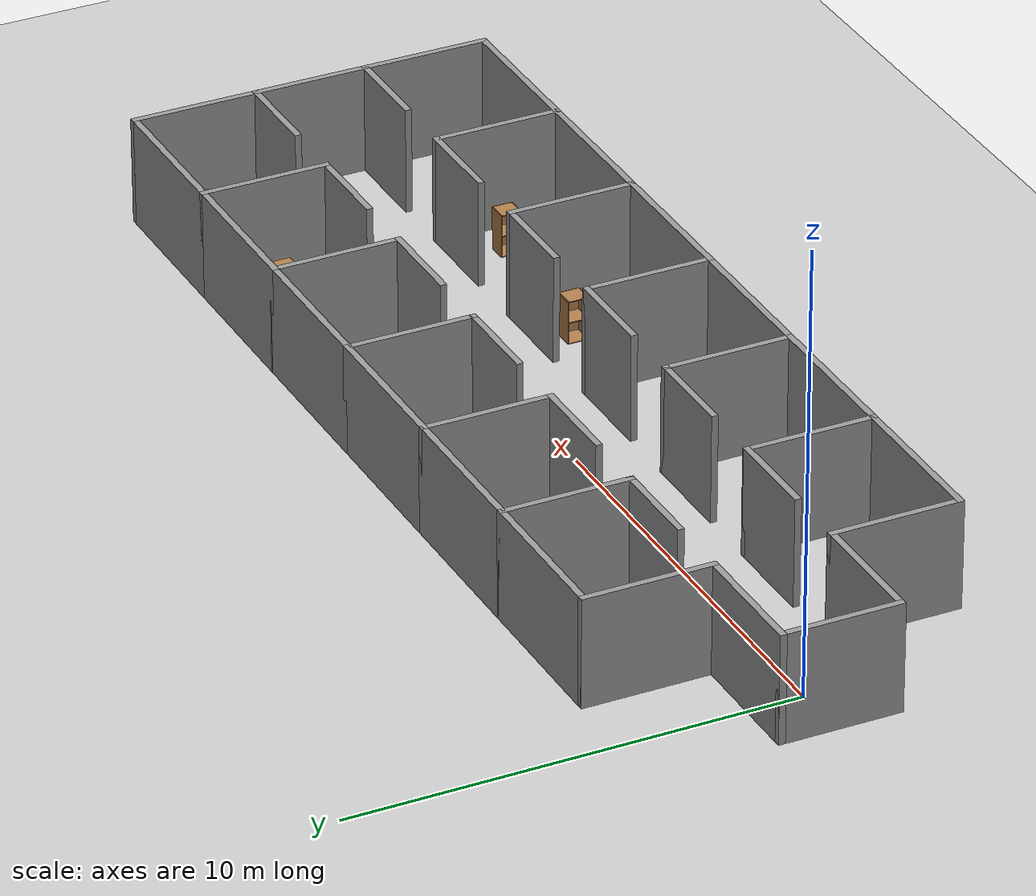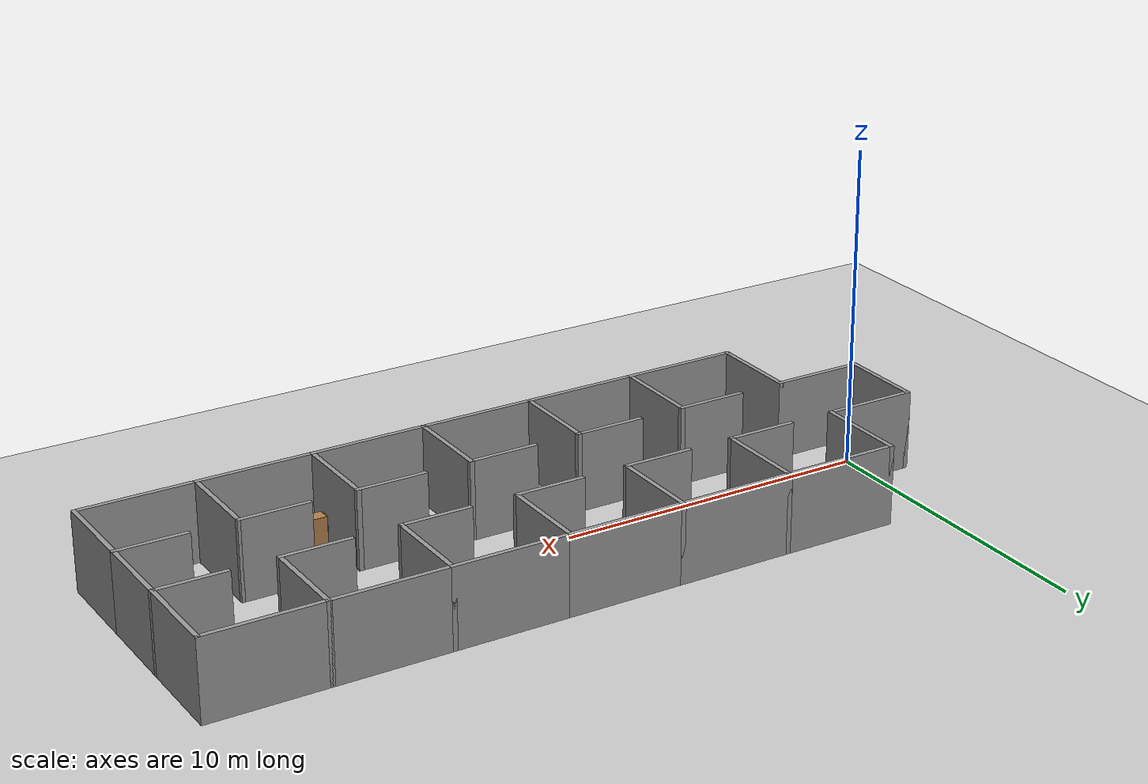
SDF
<sdf version="1.7">
 <world name="default">
  <light name="sun" type="directional">
   <pose>0 0 10 0 -0 0</pose>
   <diffuse>0.8 0.8 0.8 1</diffuse>
   <specular>0.2 0.2 0.2 1</specular>
   <attenuation>
    <range>1000</range>
    <constant>0.9</constant>
    <linear>0.01</linear>
    <quadratic>0.001</quadratic>
   </attenuation>
   <direction>-0.5 0.1 -0.9</direction>
   <spot><inner_angle>0</inner_angle><outer_angle>0</outer_angle><falloff>0</falloff></spot>
  </light>
  <model name="ground_plane">
   <static>1</static>
   <link name="link">
    <collision name="collision">
     <geometry><plane><normal>0 0 1</normal><size>100 100</size></plane></geometry>
     <surface><friction><ode><mu>100</mu><mu2>50</mu2></ode></friction></surface>
    </collision>
    <visual name="visual">
     <cast_shadows>0</cast_shadows>
     <geometry><plane><normal>0 0 1</normal><size>100 100</size></plane></geometry>
     <material>
      <script><uri>file://media/materials/scripts/gazebo.material</uri><name>Gazebo/Grey</name></script>
     </material>
    </visual>
   </link>
  </model>
  <gravity>0 0 -9.8</gravity>
  <magnetic_field>6e-06 2.3e-05 -4.2e-05</magnetic_field>
  <atmosphere type="adiabatic"/>
  <physics type="ode">
   <max_step_size>0.001</max_step_size>
   <real_time_factor>1</real_time_factor>
   <real_time_update_rate>1000</real_time_update_rate>
  </physics>
  <scene><ambient>0.4 0.4 0.4 1</ambient><background>0.7 0.7 0.7 1</background><shadows>1</shadows></scene>
  <spherical_coordinates>
   <surface_model>EARTH_WGS84</surface_model>
   <latitude_deg>0</latitude_deg>
   <longitude_deg>0</longitude_deg>
   <elevation>0</elevation>
   <heading_deg>0</heading_deg>
  </spherical_coordinates>
  <model name="indoors_hotal">
   <pose>10.9758 -0.129699 0 0 -0 0</pose>
   <link name="Wall_0">
    <collision name="Wall_0_Collision">
     <geometry><box><size>2.75 0.15 2.5</size></box></geometry>
     <pose>0 0 1.25 0 -0 0</pose>
    </collision>
    <visual name="Wall_0_Visual">
     <pose>0 0 1.25 0 -0 0</pose>
     <geometry><box><size>2.75 0.15 2.5</size></box></geometry>
     <material>
      <script><uri>file://media/materials/scripts/gazebo.material</uri><name>Gazebo/Grey</name></script>
      <ambient>1 1 1 1</ambient>
     </material>
     <meta><layer>0</layer></meta>
    </visual>
    <pose>-12.225 -0 0 0 -0 -1.5708</pose>
   </link>
   <link name="Wall_10">
    <collision name="Wall_10_Collision">
     <geometry><box><size>3 0.15 2.5</size></box></geometry>
     <pose>0 0 1.25 0 -0 0</pose>
    </collision>
    <visual name="Wall_10_Visual">
     <pose>0 0 1.25 0 -0 0</pose>
     <geometry><box><size>3 0.15 2.5</size></box></geometry>
     <material>
      <script><uri>file://media/materials/scripts/gazebo.material</uri><name>Gazebo/Grey</name></script>
      <ambient>1 1 1 1</ambient>
     </material>
     <meta><layer>0</layer></meta>
    </visual>
    <pose>-9.375 2.725 0 0 -0 1.5708</pose>
   </link>
   <link name="Wall_11">
    <collision name="Wall_11_Collision">
     <geometry><box><size>3.75 0.15 2.5</size></box></geometry>
     <pose>0 0 1.25 0 -0 0</pose>
    </collision>
    <visual name="Wall_11_Visual">
     <pose>0 0 1.25 0 -0 0</pose>
     <geometry><box><size>3.75 0.15 2.5</size></box></geometry>
     <material>
      <script><uri>file://media/materials/scripts/gazebo.material</uri><name>Gazebo/Grey</name></script>
      <ambient>1 1 1 1</ambient>
     </material>
     <meta><layer>0</layer></meta>
    </visual>
    <pose>-7.575 4.15 0 0 -0 0</pose>
   </link>
   <link name="Wall_12">
    <collision name="Wall_12_Collision">
     <geometry><box><size>3 0.15 2.5</size></box></geometry>
     <pose>0 0 1.25 0 -0 0</pose>
    </collision>
    <visual name="Wall_12_Visual">
     <pose>0 0 1.25 0 -0 0</pose>
     <geometry><box><size>3 0.15 2.5</size></box></geometry>
     <material>
      <script><uri>file://media/materials/scripts/gazebo.material</uri><name>Gazebo/Grey</name></script>
      <ambient>1 1 1 1</ambient>
     </material>
     <meta><layer>0</layer></meta>
    </visual>
    <pose>-5.775 2.725 0 0 -0 -1.5708</pose>
   </link>
   <link name="Wall_13">
    <collision name="Wall_13_Collision">
     <geometry><box><size>2.25 0.15 2.5</size></box></geometry>
     <pose>0 0 1.25 0 -0 0</pose>
    </collision>
    <visual name="Wall_13_Visual">
     <pose>0 0 1.25 0 -0 0</pose>
     <geometry><box><size>2.25 0.15 2.5</size></box></geometry>
     <material>
      <script><uri>file://media/materials/scripts/gazebo.material</uri><name>Gazebo/Grey</name></script>
      <ambient>1 1 1 1</ambient>
     </material>
     <meta><layer>0</layer></meta>
    </visual>
    <pose>-6.825 1.3 0 0 -0 3.14159</pose>
   </link>
   <link name="Wall_15">
    <collision name="Wall_15_Collision">
     <geometry><box><size>3.75 0.15 2.5</size></box></geometry>
     <pose>0 0 1.25 0 -0 0</pose>
    </collision>
    <visual name="Wall_15_Visual">
     <pose>0 0 1.25 0 -0 0</pose>
     <geometry><box><size>3.75 0.15 2.5</size></box></geometry>
     <material>
      <script><uri>file://media/materials/scripts/gazebo.material</uri><name>Gazebo/Grey</name></script>
      <ambient>1 1 1 1</ambient>
     </material>
     <meta><layer>0</layer></meta>
    </visual>
    <pose>-3.975 4.15 0 0 -0 0</pose>
   </link>
   <link name="Wall_16">
    <collision name="Wall_16_Collision">
     <geometry><box><size>3 0.15 2.5</size></box></geometry>
     <pose>0 0 1.25 0 -0 0</pose>
    </collision>
    <visual name="Wall_16_Visual">
     <pose>0 0 1.25 0 -0 0</pose>
     <geometry><box><size>3 0.15 2.5</size></box></geometry>
     <material>
      <script><uri>file://media/materials/scripts/gazebo.material</uri><name>Gazebo/Grey</name></script>
      <ambient>1 1 1 1</ambient>
     </material>
     <meta><layer>0</layer></meta>
    </visual>
    <pose>-2.175 2.725 0 0 -0 -1.5708</pose>
   </link>
   <link name="Wall_17">
    <collision name="Wall_17_Collision">
     <geometry><box><size>2.25 0.15 2.5</size></box></geometry>
     <pose>0 0 1.25 0 -0 0</pose>
    </collision>
    <visual name="Wall_17_Visual">
     <pose>0 0 1.25 0 -0 0</pose>
     <geometry><box><size>2.25 0.15 2.5</size></box></geometry>
     <material>
      <script><uri>file://media/materials/scripts/gazebo.material</uri><name>Gazebo/Grey</name></script>
      <ambient>1 1 1 1</ambient>
     </material>
     <meta><layer>0</layer></meta>
    </visual>
    <pose>-3.225 1.3 0 0 -0 3.14159</pose>
   </link>
   <link name="Wall_19">
    <collision name="Wall_19_Collision">
     <geometry><box><size>3.75 0.15 2.5</size></box></geometry>
     <pose>0 0 1.25 0 -0 0</pose>
    </collision>
    <visual name="Wall_19_Visual">
     <pose>0 0 1.25 0 -0 0</pose>
     <geometry><box><size>3.75 0.15 2.5</size></box></geometry>
     <material>
      <script><uri>file://media/materials/scripts/gazebo.material</uri><name>Gazebo/Grey</name></script>
      <ambient>1 1 1 1</ambient>
     </material>
     <meta><layer>0</layer></meta>
    </visual>
    <pose>-3.975 -4.15 0 0 -0 0</pose>
   </link>
   <link name="Wall_2">
    <collision name="Wall_2_Collision">
     <geometry><box><size>3 0.15 2.5</size></box></geometry>
     <pose>0 0 1.25 0 -0 0</pose>
    </collision>
    <visual name="Wall_2_Visual">
     <pose>0 0 1.25 0 -0 0</pose>
     <geometry><box><size>3 0.15 2.5</size></box></geometry>
     <material>
      <script><uri>file://media/materials/scripts/gazebo.material</uri><name>Gazebo/Grey</name></script>
      <ambient>1 1 1 1</ambient>
     </material>
     <meta><layer>0</layer></meta>
    </visual>
    <pose>-10.8 -1.3 0 0 -0 0</pose>
   </link>
   <link name="Wall_20">
    <collision name="Wall_20_Collision">
     <geometry><box><size>3 0.15 2.5</size></box></geometry>
     <pose>0 0 1.25 0 -0 0</pose>
    </collision>
    <visual name="Wall_20_Visual">
     <pose>0 0 1.25 0 -0 0</pose>
     <geometry><box><size>3 0.15 2.5</size></box></geometry>
     <material>
      <script><uri>file://media/materials/scripts/gazebo.material</uri><name>Gazebo/Grey</name></script>
      <ambient>1 1 1 1</ambient>
     </material>
     <meta><layer>0</layer></meta>
    </visual>
    <pose>-2.175 -2.725 0 0 -0 1.5708</pose>
   </link>
   <link name="Wall_21">
    <collision name="Wall_21_Collision">
     <geometry><box><size>2.25 0.15 2.5</size></box></geometry>
     <pose>0 0 1.25 0 -0 0</pose>
    </collision>
    <visual name="Wall_21_Visual">
     <pose>0 0 1.25 0 -0 0</pose>
     <geometry><box><size>2.25 0.15 2.5</size></box></geometry>
     <material>
      <script><uri>file://media/materials/scripts/gazebo.material</uri><name>Gazebo/Grey</name></script>
      <ambient>1 1 1 1</ambient>
     </material>
     <meta><layer>0</layer></meta>
    </visual>
    <pose>-3.225 -1.3 0 0 -0 3.14159</pose>
   </link>
   <link name="Wall_23">
    <collision name="Wall_23_Collision">
     <geometry><box><size>3.75 0.15 2.5</size></box></geometry>
     <pose>0 0 1.25 0 -0 0</pose>
    </collision>
    <visual name="Wall_23_Visual">
     <pose>0 0 1.25 0 -0 0</pose>
     <geometry><box><size>3.75 0.15 2.5</size></box></geometry>
     <material>
      <script><uri>file://media/materials/scripts/gazebo.material</uri><name>Gazebo/Grey</name></script>
      <ambient>1 1 1 1</ambient>
     </material>
     <meta><layer>0</layer></meta>
    </visual>
    <pose>-0.375 4.15 0 0 -0 0</pose>
   </link>
   <link name="Wall_24">
    <collision name="Wall_24_Collision">
     <geometry><box><size>3 0.15 2.5</size></box></geometry>
     <pose>0 0 1.25 0 -0 0</pose>
    </collision>
    <visual name="Wall_24_Visual">
     <pose>0 0 1.25 0 -0 0</pose>
     <geometry><box><size>3 0.15 2.5</size></box></geometry>
     <material>
      <script><uri>file://media/materials/scripts/gazebo.material</uri><name>Gazebo/Grey</name></script>
      <ambient>1 1 1 1</ambient>
     </material>
     <meta><layer>0</layer></meta>
    </visual>
    <pose>1.425 2.725 0 0 -0 -1.5708</pose>
   </link>
   <link name="Wall_25">
    <collision name="Wall_25_Collision">
     <geometry><box><size>2.25 0.15 2.5</size></box></geometry>
     <pose>0 0 1.25 0 -0 0</pose>
    </collision>
    <visual name="Wall_25_Visual">
     <pose>0 0 1.25 0 -0 0</pose>
     <geometry><box><size>2.25 0.15 2.5</size></box></geometry>
     <material>
      <script><uri>file://media/materials/scripts/gazebo.material</uri><name>Gazebo/Grey</name></script>
      <ambient>1 1 1 1</ambient>
     </material>
     <meta><layer>0</layer></meta>
    </visual>
    <pose>0.375 1.3 0 0 -0 3.14159</pose>
   </link>
   <link name="Wall_27">
    <collision name="Wall_27_Collision">
     <geometry><box><size>3.75 0.15 2.5</size></box></geometry>
     <pose>0 0 1.25 0 -0 0</pose>
    </collision>
    <visual name="Wall_27_Visual">
     <pose>0 0 1.25 0 -0 0</pose>
     <geometry><box><size>3.75 0.15 2.5</size></box></geometry>
     <material>
      <script><uri>file://media/materials/scripts/gazebo.material</uri><name>Gazebo/Grey</name></script>
      <ambient>1 1 1 1</ambient>
     </material>
     <meta><layer>0</layer></meta>
    </visual>
    <pose>-0.375 -4.15 0 0 -0 0</pose>
   </link>
   <link name="Wall_28">
    <collision name="Wall_28_Collision">
     <geometry><box><size>3 0.15 2.5</size></box></geometry>
     <pose>0 0 1.25 0 -0 0</pose>
    </collision>
    <visual name="Wall_28_Visual">
     <pose>0 0 1.25 0 -0 0</pose>
     <geometry><box><size>3 0.15 2.5</size></box></geometry>
     <material>
      <script><uri>file://media/materials/scripts/gazebo.material</uri><name>Gazebo/Grey</name></script>
      <ambient>1 1 1 1</ambient>
     </material>
     <meta><layer>0</layer></meta>
    </visual>
    <pose>1.425 -2.725 0 0 -0 1.5708</pose>
   </link>
   <link name="Wall_29">
    <collision name="Wall_29_Collision">
     <geometry><box><size>2.25 0.15 2.5</size></box></geometry>
     <pose>0 0 1.25 0 -0 0</pose>
    </collision>
    <visual name="Wall_29_Visual">
     <pose>0 0 1.25 0 -0 0</pose>
     <geometry><box><size>2.25 0.15 2.5</size></box></geometry>
     <material>
      <script><uri>file://media/materials/scripts/gazebo.material</uri><name>Gazebo/Grey</name></script>
      <ambient>1 1 1 1</ambient>
     </material>
     <meta><layer>0</layer></meta>
    </visual>
    <pose>0.375 -1.3 0 0 -0 3.14159</pose>
   </link>
   <link name="Wall_31">
    <collision name="Wall_31_Collision">
     <geometry><box><size>3.75 0.15 2.5</size></box></geometry>
     <pose>0 0 1.25 0 -0 0</pose>
    </collision>
    <visual name="Wall_31_Visual">
     <pose>0 0 1.25 0 -0 0</pose>
     <geometry><box><size>3.75 0.15 2.5</size></box></geometry>
     <material>
      <script><uri>file://media/materials/scripts/gazebo.material</uri><name>Gazebo/Grey</name></script>
      <ambient>1 1 1 1</ambient>
     </material>
     <meta><layer>0</layer></meta>
    </visual>
    <pose>3.225 4.15 0 0 -0 0</pose>
   </link>
   <link name="Wall_32">
    <collision name="Wall_32_Collision">
     <geometry><box><size>3 0.15 2.5</size></box></geometry>
     <pose>0 0 1.25 0 -0 0</pose>
    </collision>
    <visual name="Wall_32_Visual">
     <pose>0 0 1.25 0 -0 0</pose>
     <geometry><box><size>3 0.15 2.5</size></box></geometry>
     <material>
      <script><uri>file://media/materials/scripts/gazebo.material</uri><name>Gazebo/Grey</name></script>
      <ambient>1 1 1 1</ambient>
     </material>
     <meta><layer>0</layer></meta>
    </visual>
    <pose>5.025 2.725 0 0 -0 -1.5708</pose>
   </link>
   <link name="Wall_33">
    <collision name="Wall_33_Collision">
     <geometry><box><size>2.25 0.15 2.5</size></box></geometry>
     <pose>0 0 1.25 0 -0 0</pose>
    </collision>
    <visual name="Wall_33_Visual">
     <pose>0 0 1.25 0 -0 0</pose>
     <geometry><box><size>2.25 0.15 2.5</size></box></geometry>
     <material>
      <script><uri>file://media/materials/scripts/gazebo.material</uri><name>Gazebo/Grey</name></script>
      <ambient>1 1 1 1</ambient>
     </material>
     <meta><layer>0</layer></meta>
    </visual>
    <pose>3.975 1.3 0 0 -0 3.14159</pose>
   </link>
   <link name="Wall_35">
    <collision name="Wall_35_Collision">
     <geometry><box><size>3.75 0.15 2.5</size></box></geometry>
     <pose>0 0 1.25 0 -0 0</pose>
    </collision>
    <visual name="Wall_35_Visual">
     <pose>0 0 1.25 0 -0 0</pose>
     <geometry><box><size>3.75 0.15 2.5</size></box></geometry>
     <material>
      <script><uri>file://media/materials/scripts/gazebo.material</uri><name>Gazebo/Grey</name></script>
      <ambient>1 1 1 1</ambient>
     </material>
     <meta><layer>0</layer></meta>
    </visual>
    <pose>6.825 4.15 0 0 -0 0</pose>
   </link>
   <link name="Wall_36">
    <collision name="Wall_36_Collision">
     <geometry><box><size>3 0.15 2.5</size></box></geometry>
     <pose>0 0 1.25 0 -0 0</pose>
    </collision>
    <visual name="Wall_36_Visual">
     <pose>0 0 1.25 0 -0 0</pose>
     <geometry><box><size>3 0.15 2.5</size></box></geometry>
     <material>
      <script><uri>file://media/materials/scripts/gazebo.material</uri><name>Gazebo/Grey</name></script>
      <ambient>1 1 1 1</ambient>
     </material>
     <meta><layer>0</layer></meta>
    </visual>
    <pose>8.625 2.725 0 0 -0 -1.5708</pose>
   </link>
   <link name="Wall_37">
    <collision name="Wall_37_Collision">
     <geometry><box><size>2.25 0.15 2.5</size></box></geometry>
     <pose>0 0 1.25 0 -0 0</pose>
    </collision>
    <visual name="Wall_37_Visual">
     <pose>0 0 1.25 0 -0 0</pose>
     <geometry><box><size>2.25 0.15 2.5</size></box></geometry>
     <material>
      <script><uri>file://media/materials/scripts/gazebo.material</uri><name>Gazebo/Grey</name></script>
      <ambient>1 1 1 1</ambient>
     </material>
     <meta><layer>0</layer></meta>
    </visual>
    <pose>7.575 1.3 0 0 -0 3.14159</pose>
   </link>
   <link name="Wall_39">
    <collision name="Wall_39_Collision">
     <geometry><box><size>3.75 0.15 2.5</size></box></geometry>
     <pose>0 0 1.25 0 -0 0</pose>
    </collision>
    <visual name="Wall_39_Visual">
     <pose>0 0 1.25 0 -0 0</pose>
     <geometry><box><size>3.75 0.15 2.5</size></box></geometry>
     <material>
      <script><uri>file://media/materials/scripts/gazebo.material</uri><name>Gazebo/Grey</name></script>
      <ambient>1 1 1 1</ambient>
     </material>
     <meta><layer>0</layer></meta>
    </visual>
    <pose>10.425 4.15 0 0 -0 0</pose>
   </link>
   <link name="Wall_4">
    <collision name="Wall_4_Collision">
     <geometry><box><size>3 0.15 2.5</size></box></geometry>
     <pose>0 0 1.25 0 -0 0</pose>
    </collision>
    <visual name="Wall_4_Visual">
     <pose>0 0 1.25 0 -0 0</pose>
     <geometry><box><size>3 0.15 2.5</size></box></geometry>
     <material>
      <script><uri>file://media/materials/scripts/gazebo.material</uri><name>Gazebo/Grey</name></script>
      <ambient>1 1 1 1</ambient>
     </material>
     <meta><layer>0</layer></meta>
    </visual>
    <pose>-9.375 -2.725 0 0 -0 -1.5708</pose>
   </link>
   <link name="Wall_40">
    <collision name="Wall_40_Collision">
     <geometry><box><size>3 0.15 2.5</size></box></geometry>
     <pose>0 0 1.25 0 -0 0</pose>
    </collision>
    <visual name="Wall_40_Visual">
     <pose>0 0 1.25 0 -0 0</pose>
     <geometry><box><size>3 0.15 2.5</size></box></geometry>
     <material>
      <script><uri>file://media/materials/scripts/gazebo.material</uri><name>Gazebo/Grey</name></script>
      <ambient>1 1 1 1</ambient>
     </material>
     <meta><layer>0</layer></meta>
    </visual>
    <pose>12.225 2.725 0 0 -0 -1.5708</pose>
   </link>
   <link name="Wall_41">
    <collision name="Wall_41_Collision">
     <geometry><box><size>2.25 0.15 2.5</size></box></geometry>
     <pose>0 0 1.25 0 -0 0</pose>
    </collision>
    <visual name="Wall_41_Visual">
     <pose>0 0 1.25 0 -0 0</pose>
     <geometry><box><size>2.25 0.15 2.5</size></box></geometry>
     <material>
      <script><uri>file://media/materials/scripts/gazebo.material</uri><name>Gazebo/Grey</name></script>
      <ambient>1 1 1 1</ambient>
     </material>
     <meta><layer>0</layer></meta>
    </visual>
    <pose>11.175 1.3 0 0 -0 3.14159</pose>
   </link>
   <link name="Wall_43">
    <collision name="Wall_43_Collision">
     <geometry><box><size>3.75 0.15 2.5</size></box></geometry>
     <pose>0 0 1.25 0 -0 0</pose>
    </collision>
    <visual name="Wall_43_Visual">
     <pose>0 0 1.25 0 -0 0</pose>
     <geometry><box><size>3.75 0.15 2.5</size></box></geometry>
     <material>
      <script><uri>file://media/materials/scripts/gazebo.material</uri><name>Gazebo/Grey</name></script>
      <ambient>1 1 1 1</ambient>
     </material>
     <meta><layer>0</layer></meta>
    </visual>
    <pose>3.225 -4.15 0 0 -0 0</pose>
   </link>
   <link name="Wall_44">
    <collision name="Wall_44_Collision">
     <geometry><box><size>3 0.15 2.5</size></box></geometry>
     <pose>0 0 1.25 0 -0 0</pose>
    </collision>
    <visual name="Wall_44_Visual">
     <pose>0 0 1.25 0 -0 0</pose>
     <geometry><box><size>3 0.15 2.5</size></box></geometry>
     <material>
      <script><uri>file://media/materials/scripts/gazebo.material</uri><name>Gazebo/Grey</name></script>
      <ambient>1 1 1 1</ambient>
     </material>
     <meta><layer>0</layer></meta>
    </visual>
    <pose>5.025 -2.725 0 0 -0 1.5708</pose>
   </link>
   <link name="Wall_45">
    <collision name="Wall_45_Collision">
     <geometry><box><size>2.25 0.15 2.5</size></box></geometry>
     <pose>0 0 1.25 0 -0 0</pose>
    </collision>
    <visual name="Wall_45_Visual">
     <pose>0 0 1.25 0 -0 0</pose>
     <geometry><box><size>2.25 0.15 2.5</size></box></geometry>
     <material>
      <script><uri>file://media/materials/scripts/gazebo.material</uri><name>Gazebo/Grey</name></script>
      <ambient>1 1 1 1</ambient>
     </material>
     <meta><layer>0</layer></meta>
    </visual>
    <pose>3.975 -1.3 0 0 -0 3.14159</pose>
   </link>
   <link name="Wall_47">
    <collision name="Wall_47_Collision">
     <geometry><box><size>3.75 0.15 2.5</size></box></geometry>
     <pose>0 0 1.25 0 -0 0</pose>
    </collision>
    <visual name="Wall_47_Visual">
     <pose>0 0 1.25 0 -0 0</pose>
     <geometry><box><size>3.75 0.15 2.5</size></box></geometry>
     <material>
      <script><uri>file://media/materials/scripts/gazebo.material</uri><name>Gazebo/Grey</name></script>
      <ambient>1 1 1 1</ambient>
     </material>
     <meta><layer>0</layer></meta>
    </visual>
    <pose>6.825 -4.15 0 0 -0 0</pose>
   </link>
   <link name="Wall_48">
    <collision name="Wall_48_Collision">
     <geometry><box><size>3 0.15 2.5</size></box></geometry>
     <pose>0 0 1.25 0 -0 0</pose>
    </collision>
    <visual name="Wall_48_Visual">
     <pose>0 0 1.25 0 -0 0</pose>
     <geometry><box><size>3 0.15 2.5</size></box></geometry>
     <material>
      <script><uri>file://media/materials/scripts/gazebo.material</uri><name>Gazebo/Grey</name></script>
      <ambient>1 1 1 1</ambient>
     </material>
     <meta><layer>0</layer></meta>
    </visual>
    <pose>8.625 -2.725 0 0 -0 1.5708</pose>
   </link>
   <link name="Wall_49">
    <collision name="Wall_49_Collision">
     <geometry><box><size>2.25 0.15 2.5</size></box></geometry>
     <pose>0 0 1.25 0 -0 0</pose>
    </collision>
    <visual name="Wall_49_Visual">
     <pose>0 0 1.25 0 -0 0</pose>
     <geometry><box><size>2.25 0.15 2.5</size></box></geometry>
     <material>
      <script><uri>file://media/materials/scripts/gazebo.material</uri><name>Gazebo/Grey</name></script>
      <ambient>1 1 1 1</ambient>
     </material>
     <meta><layer>0</layer></meta>
    </visual>
    <pose>7.575 -1.3 0 0 -0 3.14159</pose>
   </link>
   <link name="Wall_5">
    <collision name="Wall_5_Collision">
     <geometry><box><size>3.75 0.15 2.5</size></box></geometry>
     <pose>0 0 1.25 0 -0 0</pose>
    </collision>
    <visual name="Wall_5_Visual">
     <pose>0 0 1.25 0 -0 0</pose>
     <geometry><box><size>3.75 0.15 2.5</size></box></geometry>
     <material>
      <script><uri>file://media/materials/scripts/gazebo.material</uri><name>Gazebo/Grey</name></script>
      <ambient>1 1 1 1</ambient>
     </material>
     <meta><layer>0</layer></meta>
    </visual>
    <pose>-7.575 -4.15 0 0 -0 0</pose>
   </link>
   <link name="Wall_51">
    <collision name="Wall_51_Collision">
     <geometry><box><size>3.75 0.15 2.5</size></box></geometry>
     <pose>0 0 1.25 0 -0 0</pose>
    </collision>
    <visual name="Wall_51_Visual">
     <pose>0 0 1.25 0 -0 0</pose>
     <geometry><box><size>3.75 0.15 2.5</size></box></geometry>
     <material>
      <script><uri>file://media/materials/scripts/gazebo.material</uri><name>Gazebo/Grey</name></script>
      <ambient>1 1 1 1</ambient>
     </material>
     <meta><layer>0</layer></meta>
    </visual>
    <pose>10.425 -4.15 0 0 -0 0</pose>
   </link>
   <link name="Wall_52">
    <collision name="Wall_52_Collision">
     <geometry><box><size>3 0.15 2.5</size></box></geometry>
     <pose>0 0 1.25 0 -0 0</pose>
    </collision>
    <visual name="Wall_52_Visual">
     <pose>0 0 1.25 0 -0 0</pose>
     <geometry><box><size>3 0.15 2.5</size></box></geometry>
     <material>
      <script><uri>file://media/materials/scripts/gazebo.material</uri><name>Gazebo/Grey</name></script>
      <ambient>1 1 1 1</ambient>
     </material>
     <meta><layer>0</layer></meta>
    </visual>
    <pose>12.225 -2.725 0 0 -0 1.5708</pose>
   </link>
   <link name="Wall_53">
    <collision name="Wall_53_Collision">
     <geometry><box><size>2.25 0.15 2.5</size></box></geometry>
     <pose>0 0 1.25 0 -0 0</pose>
    </collision>
    <visual name="Wall_53_Visual">
     <pose>0 0 1.25 0 -0 0</pose>
     <geometry><box><size>2.25 0.15 2.5</size></box></geometry>
     <material>
      <script><uri>file://media/materials/scripts/gazebo.material</uri><name>Gazebo/Grey</name></script>
      <ambient>1 1 1 1</ambient>
     </material>
     <meta><layer>0</layer></meta>
    </visual>
    <pose>11.175 -1.3 0 0 -0 3.14159</pose>
   </link>
   <link name="Wall_55">
    <collision name="Wall_55_Collision">
     <geometry><box><size>2.75 0.15 2.5</size></box></geometry>
     <pose>0 0 1.25 0 -0 0</pose>
    </collision>
    <visual name="Wall_55_Visual">
     <pose>0 0 1.25 0 -0 0</pose>
     <geometry><box><size>2.75 0.15 2.5</size></box></geometry>
     <material>
      <script><uri>file://media/materials/scripts/gazebo.material</uri><name>Gazebo/Grey</name></script>
      <ambient>1 1 1 1</ambient>
     </material>
     <meta><layer>0</layer></meta>
    </visual>
    <pose>12.225 -0 0 0 -0 1.5708</pose>
   </link>
   <link name="Wall_6">
    <collision name="Wall_6_Collision">
     <geometry><box><size>3 0.15 2.5</size></box></geometry>
     <pose>0 0 1.25 0 -0 0</pose>
    </collision>
    <visual name="Wall_6_Visual">
     <pose>0 0 1.25 0 -0 0</pose>
     <geometry><box><size>3 0.15 2.5</size></box></geometry>
     <material>
      <script><uri>file://media/materials/scripts/gazebo.material</uri><name>Gazebo/Grey</name></script>
      <ambient>1 1 1 1</ambient>
     </material>
     <meta><layer>0</layer></meta>
    </visual>
    <pose>-5.775 -2.725 0 0 -0 1.5708</pose>
   </link>
   <link name="Wall_7">
    <collision name="Wall_7_Collision">
     <geometry><box><size>2.25 0.15 2.5</size></box></geometry>
     <pose>0 0 1.25 0 -0 0</pose>
    </collision>
    <visual name="Wall_7_Visual">
     <pose>0 0 1.25 0 -0 0</pose>
     <geometry><box><size>2.25 0.15 2.5</size></box></geometry>
     <material>
      <script><uri>file://media/materials/scripts/gazebo.material</uri><name>Gazebo/Grey</name></script>
      <ambient>1 1 1 1</ambient>
     </material>
     <meta><layer>0</layer></meta>
    </visual>
    <pose>-6.825 -1.3 0 0 -0 3.14159</pose>
   </link>
   <link name="Wall_9">
    <collision name="Wall_9_Collision">
     <geometry><box><size>3 0.15 2.5</size></box></geometry>
     <pose>0 0 1.25 0 -0 0</pose>
    </collision>
    <visual name="Wall_9_Visual">
     <pose>0 0 1.25 0 -0 0</pose>
     <geometry><box><size>3 0.15 2.5</size></box></geometry>
     <material>
      <script><uri>file://media/materials/scripts/gazebo.material</uri><name>Gazebo/Grey</name></script>
      <ambient>1 1 1 1</ambient>
     </material>
     <meta><layer>0</layer></meta>
    </visual>
    <pose>-10.8 1.3 0 0 -0 0</pose>
   </link>
   <static>1</static>
  </model>
  <model name="bookshelf">
   <static>1</static>
   <link name="link">
    <inertial><mass>1</mass></inertial>
    <collision name="back">
     <pose>0 0.005 0.6 0 -0 0</pose>
     <geometry><box><size>0.9 0.01 1.2</size></box></geometry>
    </collision>
    <visual name="visual1">
     <pose>0 0.005 0.6 0 -0 0</pose>
     <geometry><box><size>0.9 0.01 1.2</size></box></geometry>
     <material>
      <script><uri>file://media/materials/scripts/gazebo.material</uri><name>Gazebo/Wood</name></script>
     </material>
    </visual>
    <collision name="left_side">
     <pose>0.45 -0.195 0.6 0 -0 0</pose>
     <geometry><box><size>0.02 0.4 1.2</size></box></geometry>
    </collision>
    <visual name="visual2">
     <pose>0.45 -0.195 0.6 0 -0 0</pose>
     <geometry><box><size>0.02 0.4 1.2</size></box></geometry>
     <material>
      <script><uri>file://media/materials/scripts/gazebo.material</uri><name>Gazebo/Wood</name></script>
     </material>
    </visual>
    <collision name="right_side">
     <pose>-0.45 -0.195 0.6 0 -0 0</pose>
     <geometry><box><size>0.02 0.4 1.2</size></box></geometry>
    </collision>
    <visual name="visual3">
     <pose>-0.45 -0.195 0.6 0 -0 0</pose>
     <geometry><box><size>0.02 0.4 1.2</size></box></geometry>
     <material>
      <script><uri>file://media/materials/scripts/gazebo.material</uri><name>Gazebo/Wood</name></script>
     </material>
    </visual>
    <collision name="bottom">
     <pose>0 -0.195 0.03 0 -0 0</pose>
     <geometry><box><size>0.88 0.4 0.06</size></box></geometry>
    </collision>
    <visual name="visual4">
     <pose>0 -0.195 0.03 0 -0 0</pose>
     <geometry><box><size>0.88 0.4 0.06</size></box></geometry>
     <material>
      <script><uri>file://media/materials/scripts/gazebo.material</uri><name>Gazebo/Wood</name></script>
     </material>
    </visual>
    <collision name="top">
     <pose>0 -0.195 1.19 0 -0 0</pose>
     <geometry><box><size>0.88 0.4 0.02</size></box></geometry>
    </collision>
    <visual name="visual5">
     <pose>0 -0.195 1.19 0 -0 0</pose>
     <geometry><box><size>0.88 0.4 0.02</size></box></geometry>
     <material>
      <script><uri>file://media/materials/scripts/gazebo.material</uri><name>Gazebo/Wood</name></script>
     </material>
    </visual>
    <collision name="low_shelf">
     <pose>0 -0.195 0.43 0 -0 0</pose>
     <geometry><box><size>0.88 0.4 0.02</size></box></geometry>
    </collision>
    <visual name="visual6">
     <pose>0 -0.195 0.43 0 -0 0</pose>
     <geometry><box><size>0.88 0.4 0.02</size></box></geometry>
     <material>
      <script><uri>file://media/materials/scripts/gazebo.material</uri><name>Gazebo/Wood</name></script>
     </material>
    </visual>
    <collision name="high_shelf">
     <pose>0 -0.195 0.8 0 -0 0</pose>
     <geometry><box><size>0.88 0.4 0.02</size></box></geometry>
    </collision>
    <visual name="visual7">
     <pose>0 -0.195 0.8 0 -0 0</pose>
     <geometry><box><size>0.88 0.4 0.02</size></box></geometry>
     <material>
      <script><uri>file://media/materials/scripts/gazebo.material</uri><name>Gazebo/Wood</name></script>
     </material>
    </visual>
   </link>
   <pose>12.9298 2.8146 0 0 -0 0</pose>
  </model>
  <model name="cabinet">
   <static>1</static>
   <link name="cabinet_bottom_plate">
    <inertial>
     <pose>0 0 -1 0 -0 0</pose>
     <inertia><ixx>2.05</ixx><ixy>0</ixy><ixz>0</ixz><iyy>2.05</iyy><iyz>0</iyz><izz>2.05</izz></inertia>
     <mass>25</mass>
    </inertial>
    <collision name="cabinet_bottom_plate_geom">
     <pose>0 0 0.01 0 -0 0</pose>
     <geometry><box><size>0.45 0.45 0.02</size></box></geometry>
    </collision>
    <visual name="cabinet_bottom_plate_geom_visual">
     <pose>0 0 0.01 0 -0 0</pose>
     <geometry><box><size>0.45 0.45 0.02</size></box></geometry>
     <material>
      <script><uri>file://media/materials/scripts/gazebo.material</uri><name>Gazebo/Wood</name></script>
     </material>
    </visual>
    <collision name="cabinet_bottom_plate_geom_cabinet_back_plate">
     <pose>0.235 0 0.51 0 -0 0</pose>
     <geometry><box><size>0.02 0.45 1.02</size></box></geometry>
    </collision>
    <visual name="cabinet_bottom_plate_geom_cabinet_back_plate_visual">
     <pose>0.235 0 0.51 0 -0 0</pose>
     <geometry><box><size>0.02 0.45 1.02</size></box></geometry>
     <material>
      <script><uri>file://media/materials/scripts/gazebo.material</uri><name>Gazebo/Wood</name></script>
     </material>
    </visual>
    <collision name="cabinet_bottom_plate_geom_cabinet_left_plate">
     <pose>0 0.235 0.51 0 -0 0</pose>
     <geometry><box><size>0.45 0.02 1.02</size></box></geometry>
    </collision>
    <visual name="cabinet_bottom_plate_geom_cabinet_left_plate_visual">
     <pose>0 0.235 0.51 0 -0 0</pose>
     <geometry><box><size>0.45 0.02 1.02</size></box></geometry>
     <material>
      <script><uri>file://media/materials/scripts/gazebo.material</uri><name>Gazebo/Wood</name></script>
     </material>
    </visual>
    <collision name="cabinet_bottom_plate_geom_cabinet_middle_plate">
     <pose>0 0 0.51 0 -0 0</pose>
     <geometry><box><size>0.45 0.45 0.02</size></box></geometry>
    </collision>
    <visual name="cabinet_bottom_plate_geom_cabinet_middle_plate_visual">
     <pose>0 0 0.51 0 -0 0</pose>
     <geometry><box><size>0.45 0.45 0.02</size></box></geometry>
     <material>
      <script><uri>file://media/materials/scripts/gazebo.material</uri><name>Gazebo/Wood</name></script>
     </material>
    </visual>
    <collision name="cabinet_bottom_plate_geom_cabinet_right_plate">
     <pose>0 -0.235 0.51 0 -0 0</pose>
     <geometry><box><size>0.45 0.02 1.02</size></box></geometry>
    </collision>
    <visual name="cabinet_bottom_plate_geom_cabinet_right_plate_visual">
     <pose>0 -0.235 0.51 0 -0 0</pose>
     <geometry><box><size>0.45 0.02 1.02</size></box></geometry>
     <material>
      <script><uri>file://media/materials/scripts/gazebo.material</uri><name>Gazebo/Wood</name></script>
     </material>
    </visual>
    <collision name="cabinet_bottom_plate_geom_cabinet_top_plate">
     <pose>0 0 1.01 0 -0 0</pose>
     <geometry><box><size>0.45 0.45 0.02</size></box></geometry>
    </collision>
    <visual name="cabinet_bottom_plate_geom_cabinet_top_plate_visual">
     <pose>0 0 1.01 0 -0 0</pose>
     <geometry><box><size>0.45 0.45 0.02</size></box></geometry>
     <material>
      <script><uri>file://media/materials/scripts/gazebo.material</uri><name>Gazebo/Wood</name></script>
     </material>
    </visual>
   </link>
   <pose>14.591 -2.21285 0 0 -0 0</pose>
  </model>
  <model name="cabinet_0">
   <static>1</static>
   <link name="cabinet_bottom_plate">
    <inertial>
     <pose>0 0 -1 0 -0 0</pose>
     <inertia><ixx>2.05</ixx><ixy>0</ixy><ixz>0</ixz><iyy>2.05</iyy><iyz>0</iyz><izz>2.05</izz></inertia>
     <mass>25</mass>
    </inertial>
    <collision name="cabinet_bottom_plate_geom">
     <pose>0 0 0.01 0 -0 0</pose>
     <geometry><box><size>0.45 0.45 0.02</size></box></geometry>
    </collision>
    <visual name="cabinet_bottom_plate_geom_visual">
     <pose>0 0 0.01 0 -0 0</pose>
     <geometry><box><size>0.45 0.45 0.02</size></box></geometry>
     <material>
      <script><uri>file://media/materials/scripts/gazebo.material</uri><name>Gazebo/Wood</name></script>
     </material>
    </visual>
    <collision name="cabinet_bottom_plate_geom_cabinet_back_plate">
     <pose>0.235 0 0.51 0 -0 0</pose>
     <geometry><box><size>0.02 0.45 1.02</size></box></geometry>
    </collision>
    <visual name="cabinet_bottom_plate_geom_cabinet_back_plate_visual">
     <pose>0.235 0 0.51 0 -0 0</pose>
     <geometry><box><size>0.02 0.45 1.02</size></box></geometry>
     <material>
      <script><uri>file://media/materials/scripts/gazebo.material</uri><name>Gazebo/Wood</name></script>
     </material>
    </visual>
    <collision name="cabinet_bottom_plate_geom_cabinet_left_plate">
     <pose>0 0.235 0.51 0 -0 0</pose>
     <geometry><box><size>0.45 0.02 1.02</size></box></geometry>
    </collision>
    <visual name="cabinet_bottom_plate_geom_cabinet_left_plate_visual">
     <pose>0 0.235 0.51 0 -0 0</pose>
     <geometry><box><size>0.45 0.02 1.02</size></box></geometry>
     <material>
      <script><uri>file://media/materials/scripts/gazebo.material</uri><name>Gazebo/Wood</name></script>
     </material>
    </visual>
    <collision name="cabinet_bottom_plate_geom_cabinet_middle_plate">
     <pose>0 0 0.51 0 -0 0</pose>
     <geometry><box><size>0.45 0.45 0.02</size></box></geometry>
    </collision>
    <visual name="cabinet_bottom_plate_geom_cabinet_middle_plate_visual">
     <pose>0 0 0.51 0 -0 0</pose>
     <geometry><box><size>0.45 0.45 0.02</size></box></geometry>
     <material>
      <script><uri>file://media/materials/scripts/gazebo.material</uri><name>Gazebo/Wood</name></script>
     </material>
    </visual>
    <collision name="cabinet_bottom_plate_geom_cabinet_right_plate">
     <pose>0 -0.235 0.51 0 -0 0</pose>
     <geometry><box><size>0.45 0.02 1.02</size></box></geometry>
    </collision>
    <visual name="cabinet_bottom_plate_geom_cabinet_right_plate_visual">
     <pose>0 -0.235 0.51 0 -0 0</pose>
     <geometry><box><size>0.45 0.02 1.02</size></box></geometry>
     <material>
      <script><uri>file://media/materials/scripts/gazebo.material</uri><name>Gazebo/Wood</name></script>
     </material>
    </visual>
    <collision name="cabinet_bottom_plate_geom_cabinet_top_plate">
     <pose>0 0 1.01 0 -0 0</pose>
     <geometry><box><size>0.45 0.45 0.02</size></box></geometry>
    </collision>
    <visual name="cabinet_bottom_plate_geom_cabinet_top_plate_visual">
     <pose>0 0 1.01 0 -0 0</pose>
     <geometry><box><size>0.45 0.45 0.02</size></box></geometry>
     <material>
      <script><uri>file://media/materials/scripts/gazebo.material</uri><name>Gazebo/Wood</name></script>
     </material>
    </visual>
   </link>
   <pose>21.9346 3.05384 0 0 -0 0</pose>
  </model>
  <model name="table">
   <static>1</static>
   <link name="link">
    <collision name="surface">
     <pose>0 0 1 0 -0 0</pose>
     <geometry><box><size>1.5 0.8 0.03</size></box></geometry>
     <surface><friction><ode><mu>0.6</mu><mu2>0.6</mu2></ode></friction></surface>
    </collision>
    <visual name="visual1">
     <pose>0 0 1 0 -0 0</pose>
     <geometry><box><size>1.5 0.8 0.03</size></box></geometry>
     <material>
      <script><uri>file://media/materials/scripts/gazebo.material</uri><name>Gazebo/Wood</name></script>
     </material>
    </visual>
    <collision name="front_left_leg">
     <pose>0.68 0.38 0.5 0 -0 0</pose>
     <geometry><cylinder><radius>0.02</radius><length>1</length></cylinder></geometry>
    </collision>
    <visual name="front_left_leg">
     <pose>0.68 0.38 0.5 0 -0 0</pose>
     <geometry><cylinder><radius>0.02</radius><length>1</length></cylinder></geometry>
     <material>
      <script><uri>file://media/materials/scripts/gazebo.material</uri><name>Gazebo/Grey</name></script>
     </material>
    </visual>
    <collision name="front_right_leg">
     <pose>0.68 -0.38 0.5 0 -0 0</pose>
     <geometry><cylinder><radius>0.02</radius><length>1</length></cylinder></geometry>
    </collision>
    <visual name="front_right_leg">
     <pose>0.68 -0.38 0.5 0 -0 0</pose>
     <geometry><cylinder><radius>0.02</radius><length>1</length></cylinder></geometry>
     <material>
      <script><uri>file://media/materials/scripts/gazebo.material</uri><name>Gazebo/Grey</name></script>
     </material>
    </visual>
    <collision name="back_right_leg">
     <pose>-0.68 -0.38 0.5 0 -0 0</pose>
     <geometry><cylinder><radius>0.02</radius><length>1</length></cylinder></geometry>
    </collision>
    <visual name="back_right_leg">
     <pose>-0.68 -0.38 0.5 0 -0 0</pose>
     <geometry><cylinder><radius>0.02</radius><length>1</length></cylinder></geometry>
     <material>
      <script><uri>file://media/materials/scripts/gazebo.material</uri><name>Gazebo/Grey</name></script>
     </material>
    </visual>
    <collision name="back_left_leg">
     <pose>-0.68 0.38 0.5 0 -0 0</pose>
     <geometry><cylinder><radius>0.02</radius><length>1</length></cylinder></geometry>
    </collision>
    <visual name="back_left_leg">
     <pose>-0.68 0.38 0.5 0 -0 0</pose>
     <geometry><cylinder><radius>0.02</radius><length>1</length></cylinder></geometry>
     <material>
      <script><uri>file://media/materials/scripts/gazebo.material</uri><name>Gazebo/Grey</name></script>
     </material>
    </visual>
   </link>
   <pose>17.9308 2.86983 0 0 -0 0</pose>
  </model>
  <model name="cabinet_1">
   <static>1</static>
   <link name="cabinet_bottom_plate">
    <inertial>
     <pose>0 0 -1 0 -0 0</pose>
     <inertia><ixx>2.05</ixx><ixy>0</ixy><ixz>0</ixz><iyy>2.05</iyy><iyz>0</iyz><izz>2.05</izz></inertia>
     <mass>25</mass>
    </inertial>
    <collision name="cabinet_bottom_plate_geom">
     <pose>0 0 0.01 0 -0 0</pose>
     <geometry><box><size>0.45 0.45 0.02</size></box></geometry>
    </collision>
    <visual name="cabinet_bottom_plate_geom_visual">
     <pose>0 0 0.01 0 -0 0</pose>
     <geometry><box><size>0.45 0.45 0.02</size></box></geometry>
     <material>
      <script><uri>file://media/materials/scripts/gazebo.material</uri><name>Gazebo/Wood</name></script>
     </material>
    </visual>
    <collision name="cabinet_bottom_plate_geom_cabinet_back_plate">
     <pose>0.235 0 0.51 0 -0 0</pose>
     <geometry><box><size>0.02 0.45 1.02</size></box></geometry>
    </collision>
    <visual name="cabinet_bottom_plate_geom_cabinet_back_plate_visual">
     <pose>0.235 0 0.51 0 -0 0</pose>
     <geometry><box><size>0.02 0.45 1.02</size></box></geometry>
     <material>
      <script><uri>file://media/materials/scripts/gazebo.material</uri><name>Gazebo/Wood</name></script>
     </material>
    </visual>
    <collision name="cabinet_bottom_plate_geom_cabinet_left_plate">
     <pose>0 0.235 0.51 0 -0 0</pose>
     <geometry><box><size>0.45 0.02 1.02</size></box></geometry>
    </collision>
    <visual name="cabinet_bottom_plate_geom_cabinet_left_plate_visual">
     <pose>0 0.235 0.51 0 -0 0</pose>
     <geometry><box><size>0.45 0.02 1.02</size></box></geometry>
     <material>
      <script><uri>file://media/materials/scripts/gazebo.material</uri><name>Gazebo/Wood</name></script>
     </material>
    </visual>
    <collision name="cabinet_bottom_plate_geom_cabinet_middle_plate">
     <pose>0 0 0.51 0 -0 0</pose>
     <geometry><box><size>0.45 0.45 0.02</size></box></geometry>
    </collision>
    <visual name="cabinet_bottom_plate_geom_cabinet_middle_plate_visual">
     <pose>0 0 0.51 0 -0 0</pose>
     <geometry><box><size>0.45 0.45 0.02</size></box></geometry>
     <material>
      <script><uri>file://media/materials/scripts/gazebo.material</uri><name>Gazebo/Wood</name></script>
     </material>
    </visual>
    <collision name="cabinet_bottom_plate_geom_cabinet_right_plate">
     <pose>0 -0.235 0.51 0 -0 0</pose>
     <geometry><box><size>0.45 0.02 1.02</size></box></geometry>
    </collision>
    <visual name="cabinet_bottom_plate_geom_cabinet_right_plate_visual">
     <pose>0 -0.235 0.51 0 -0 0</pose>
     <geometry><box><size>0.45 0.02 1.02</size></box></geometry>
     <material>
      <script><uri>file://media/materials/scripts/gazebo.material</uri><name>Gazebo/Wood</name></script>
     </material>
    </visual>
    <collision name="cabinet_bottom_plate_geom_cabinet_top_plate">
     <pose>0 0 1.01 0 -0 0</pose>
     <geometry><box><size>0.45 0.45 0.02</size></box></geometry>
    </collision>
    <visual name="cabinet_bottom_plate_geom_cabinet_top_plate_visual">
     <pose>0 0 1.01 0 -0 0</pose>
     <geometry><box><size>0.45 0.45 0.02</size></box></geometry>
     <material>
      <script><uri>file://media/materials/scripts/gazebo.material</uri><name>Gazebo/Wood</name></script>
     </material>
    </visual>
   </link>
   <pose>18.5452 -2.57788 0 0 -0 0</pose>
  </model>
  <model name="bookshelf_0">
   <static>1</static>
   <link name="link">
    <inertial><mass>1</mass></inertial>
    <collision name="back">
     <pose>0 0.005 0.6 0 -0 0</pose>
     <geometry><box><size>0.9 0.01 1.2</size></box></geometry>
    </collision>
    <visual name="visual1">
     <pose>0 0.005 0.6 0 -0 0</pose>
     <geometry><box><size>0.9 0.01 1.2</size></box></geometry>
     <material>
      <script><uri>file://media/materials/scripts/gazebo.material</uri><name>Gazebo/Wood</name></script>
     </material>
    </visual>
    <collision name="left_side">
     <pose>0.45 -0.195 0.6 0 -0 0</pose>
     <geometry><box><size>0.02 0.4 1.2</size></box></geometry>
    </collision>
    <visual name="visual2">
     <pose>0.45 -0.195 0.6 0 -0 0</pose>
     <geometry><box><size>0.02 0.4 1.2</size></box></geometry>
     <material>
      <script><uri>file://media/materials/scripts/gazebo.material</uri><name>Gazebo/Wood</name></script>
     </material>
    </visual>
    <collision name="right_side">
     <pose>-0.45 -0.195 0.6 0 -0 0</pose>
     <geometry><box><size>0.02 0.4 1.2</size></box></geometry>
    </collision>
    <visual name="visual3">
     <pose>-0.45 -0.195 0.6 0 -0 0</pose>
     <geometry><box><size>0.02 0.4 1.2</size></box></geometry>
     <material>
      <script><uri>file://media/materials/scripts/gazebo.material</uri><name>Gazebo/Wood</name></script>
     </material>
    </visual>
    <collision name="bottom">
     <pose>0 -0.195 0.03 0 -0 0</pose>
     <geometry><box><size>0.88 0.4 0.06</size></box></geometry>
    </collision>
    <visual name="visual4">
     <pose>0 -0.195 0.03 0 -0 0</pose>
     <geometry><box><size>0.88 0.4 0.06</size></box></geometry>
     <material>
      <script><uri>file://media/materials/scripts/gazebo.material</uri><name>Gazebo/Wood</name></script>
     </material>
    </visual>
    <collision name="top">
     <pose>0 -0.195 1.19 0 -0 0</pose>
     <geometry><box><size>0.88 0.4 0.02</size></box></geometry>
    </collision>
    <visual name="visual5">
     <pose>0 -0.195 1.19 0 -0 0</pose>
     <geometry><box><size>0.88 0.4 0.02</size></box></geometry>
     <material>
      <script><uri>file://media/materials/scripts/gazebo.material</uri><name>Gazebo/Wood</name></script>
     </material>
    </visual>
    <collision name="low_shelf">
     <pose>0 -0.195 0.43 0 -0 0</pose>
     <geometry><box><size>0.88 0.4 0.02</size></box></geometry>
    </collision>
    <visual name="visual6">
     <pose>0 -0.195 0.43 0 -0 0</pose>
     <geometry><box><size>0.88 0.4 0.02</size></box></geometry>
     <material>
      <script><uri>file://media/materials/scripts/gazebo.material</uri><name>Gazebo/Wood</name></script>
     </material>
    </visual>
    <collision name="high_shelf">
     <pose>0 -0.195 0.8 0 -0 0</pose>
     <geometry><box><size>0.88 0.4 0.02</size></box></geometry>
    </collision>
    <visual name="visual7">
     <pose>0 -0.195 0.8 0 -0 0</pose>
     <geometry><box><size>0.88 0.4 0.02</size></box></geometry>
     <material>
      <script><uri>file://media/materials/scripts/gazebo.material</uri><name>Gazebo/Wood</name></script>
     </material>
    </visual>
   </link>
   <pose>16.7909 -2.76537 0 0 -0 0</pose>
  </model>
 </world>
</sdf>
